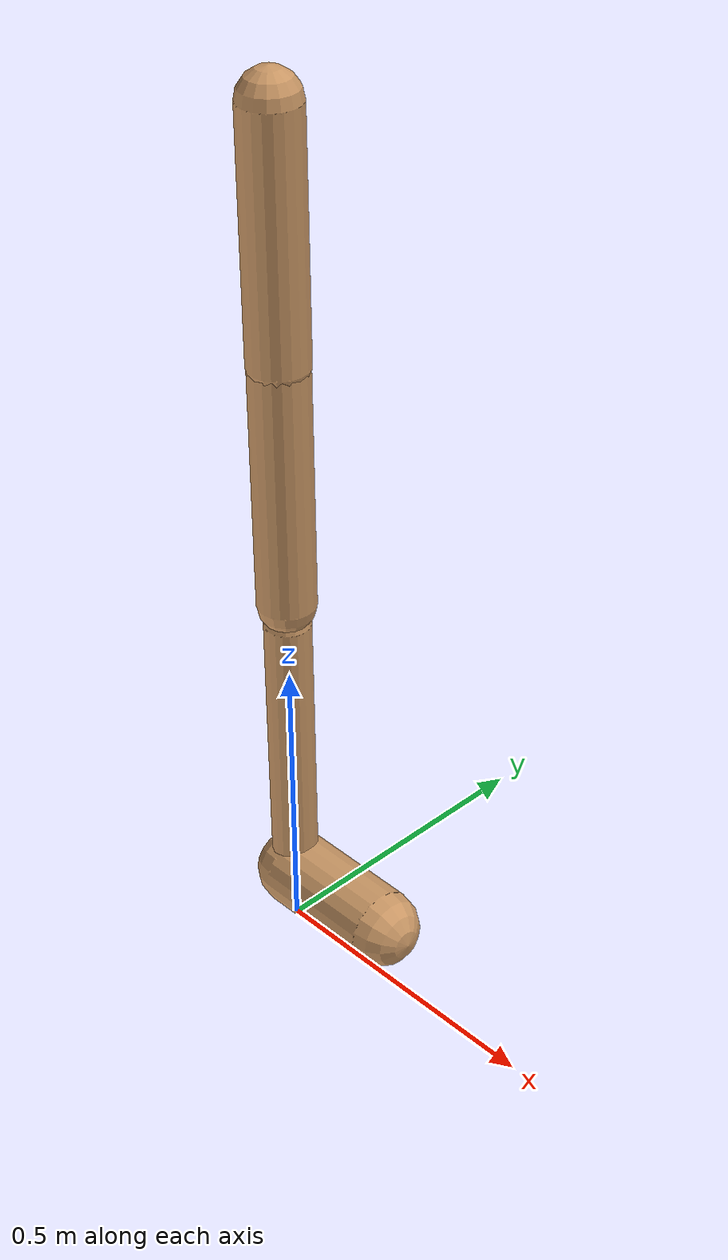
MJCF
<mujoco model="walker2d">
  <compiler angle="degree" coordinate="global" inertiafromgeom="true" />
  <default>
    <joint armature="0.01" damping=".1" limited="true" />
    <geom conaffinity="0" condim="3" contype="1" density="1000" friction="0.8 .1 .1" rgba="0.8 0.6 .4 1" />
  </default>
  <option integrator="RK4" timestep="0.002" />
  <worldbody>

    <body name="torso" pos="0 0 -0.07918228722205664">
      <joint armature="0" axis="1 0 0" damping="0" limited="false" name="ignorex" pos="0 0 0" stiffness="0" type="slide" />
      <joint armature="0" axis="0 0 1" damping="0" limited="false" name="ignorez" pos="0 0 0" ref="1.25" stiffness="0" type="slide" />
      <joint armature="0" axis="0 1 0" damping="0" limited="false" name="ignorey" pos="0 0 0" stiffness="0" type="hinge" />
      <geom fromto="0 0 1.45 0 0 1.05" name="torso_geom" size="0.04869316064515754" type="capsule" />
      <body name="thigh">
        <joint axis="0 -1 0" name="thigh_joint" pos="0 0 1.05" range="-150 0" type="hinge" />
        <geom fromto="0.0 0.0 1.05 0.0 0.0 0.6375073992104479" name="thigh_geom" size="0.047508342962026176" type="capsule" />
        <body name="leg" pos="0.0 0.0 0.03750739921044788">
          <joint axis="0 -1 0" name="leg_joint" pos="0 0 0.6" range="-150 0" type="hinge" />
          <geom fromto="0.0 0.0 0.6 0.0 0.0 0.14167488801160877" name="leg_geom" size="0.03800667436962094" type="capsule" />
          <body name="foot" pos="0.0 0.0 0.04167488801160876">
            <joint axis="0 -1 0" name="foot_joint" pos="0 0 0.1" range="-45 45" type="hinge" />
            <geom fromto="-0.0 0.0 0.1 0.20375695212370212 0.0 0.1" name="foot_geom" size="0.06389309708785003" type="capsule" />
          </body>
        </body>
      </body>

      <body name="thigh_left">
        <joint axis="0 -1 0" name="thigh_left_joint" pos="0 0 1.05" range="-150 0" type="hinge" />
        <geom fromto="0.0 0.0 1.05 0.0 0.0 0.6375073992104479" name="thigh_left_geom" rgba=".7 .3 .6 1" size="0.047508342962026176" type="capsule" />
        <body name="leg_left" pos="0.0 0.0 0.03750739921044788">
          <joint axis="0 -1 0" name="leg_left_joint" pos="0 0 0.6" range="-150 0" type="hinge" />
          <geom fromto="0.0 0.0 0.6 0.0 0.0 0.14167488801160877" name="leg_left_geom" rgba=".7 .3 .6 1" size="0.03800667436962094" type="capsule" />
          <body name="foot_left" pos="0.0 0.0 0.04167488801160876">
            <joint axis="0 -1 0" name="foot_left_joint" pos="0 0 0.1" range="-45 45" type="hinge" />
            <geom fromto="-0.0 0.0 0.1 0.20375695212370212 0.0 0.1" name="foot_left_geom" rgba=".7 .3 .6 1" size="0.06389309708785003" type="capsule" />
          </body>
        </body>
      </body>
    </body>
  </worldbody>
  <actuator>

    <motor ctrllimited="true" ctrlrange="-1.0 1.0" gear="100" joint="thigh_joint" />
    <motor ctrllimited="true" ctrlrange="-1.0 1.0" gear="100" joint="leg_joint" />
    <motor ctrllimited="true" ctrlrange="-1.0 1.0" gear="100" joint="foot_joint" />
    <motor ctrllimited="true" ctrlrange="-1.0 1.0" gear="100" joint="thigh_left_joint" />
    <motor ctrllimited="true" ctrlrange="-1.0 1.0" gear="100" joint="leg_left_joint" />
    <motor ctrllimited="true" ctrlrange="-1.0 1.0" gear="100" joint="foot_left_joint" />

  </actuator>
</mujoco>
